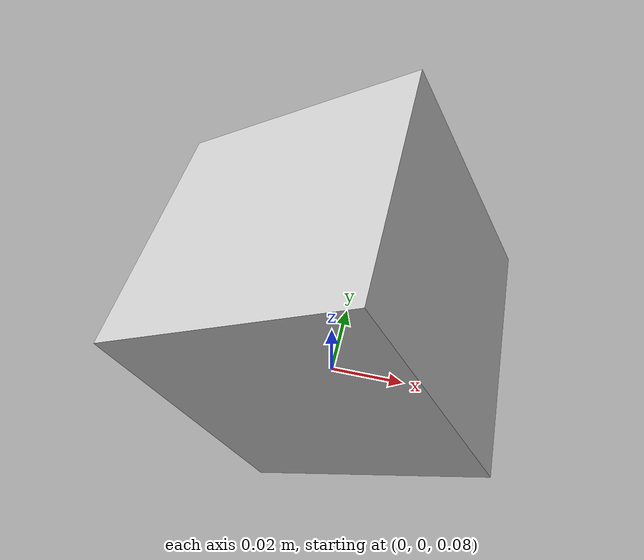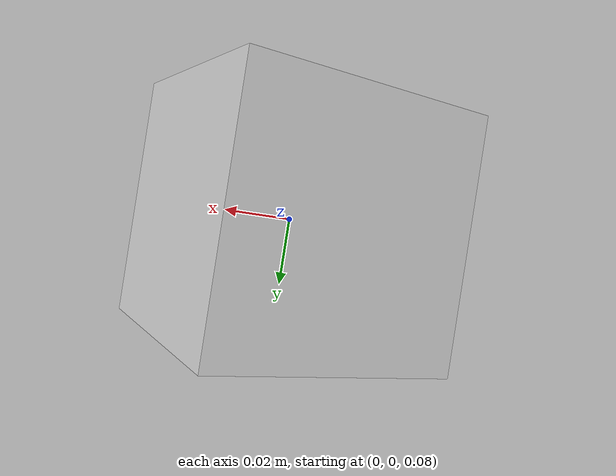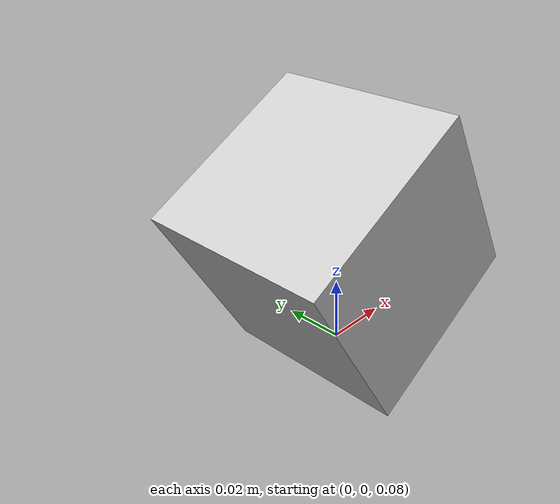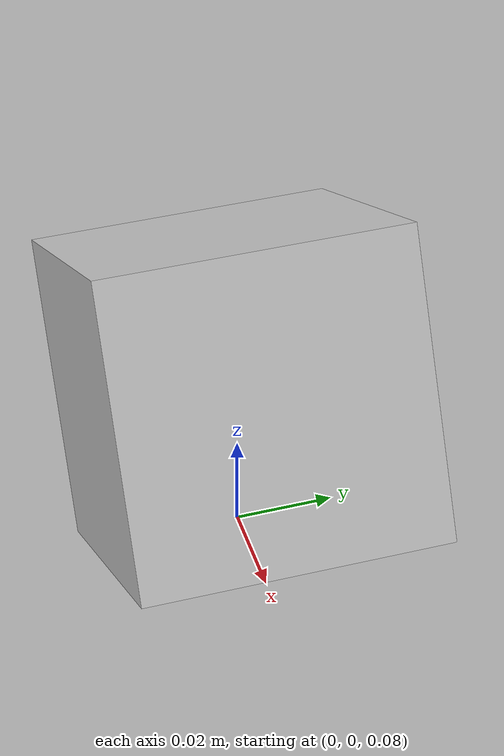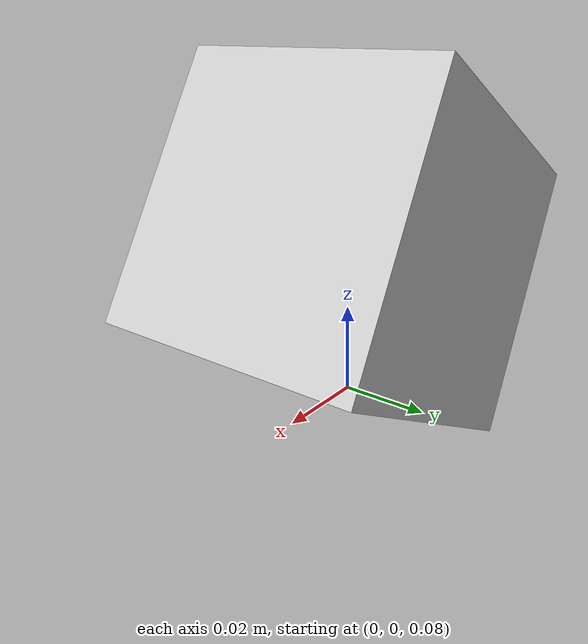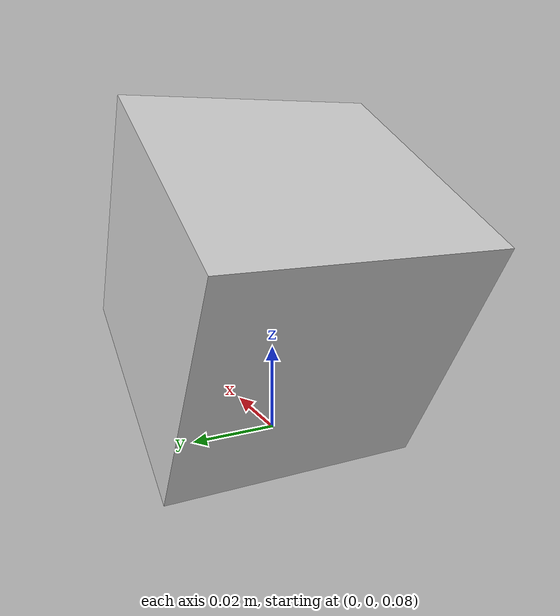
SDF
<?xml version="1.0" ?>
<sdf version="1.5">
  <model name="Cube">
    <link name="link">
      <pose>0 0 0.115 0 0 0</pose>
      <inertial>
        <mass>0.390</mass>
        <inertia>
          <ixx>0.00058</ixx>
          <ixy>0</ixy>
          <ixz>0</ixz>
          <iyy>0.00058</iyy>
          <iyz>0</iyz>
          <izz>0.00019</izz>
        </inertia>
      </inertial>
      <collision name="collision">
        <geometry>
          <mesh>
            <uri>model://1-Rubik/meshes/Cube.dae</uri>
          </mesh>
        </geometry>
      </collision>
      <visual name="visual">
        <geometry>
          <mesh>
            <uri>model://1-Rubik/meshes/Cube.dae</uri>
          </mesh>
        </geometry>
        <material>
          <script>
            <uri>model://1-Rubik/materials/scripts</uri>
            <uri>model://1-Rubik/materials/textures</uri>
            <name>Cube/Diffuse</name>
          </script>
        </material>
      </visual>
    </link>
  </model>
</sdf>
